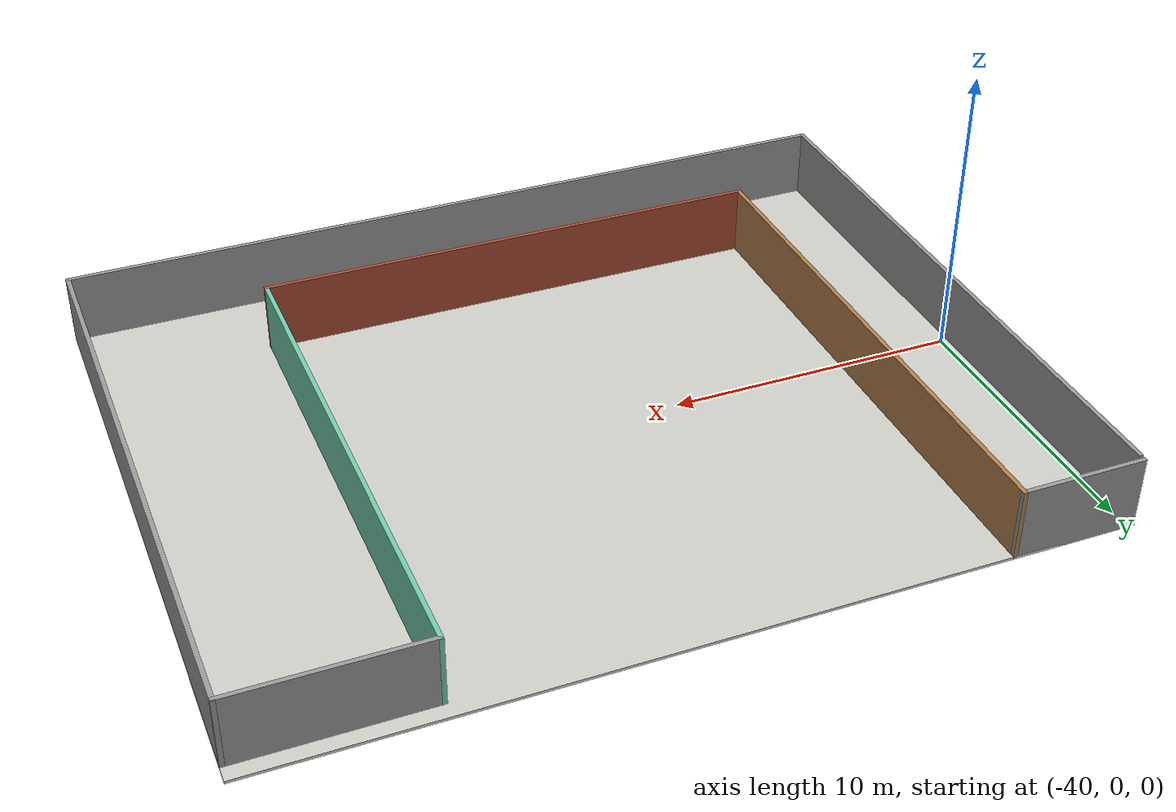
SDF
<?xml version='1.0'?>
<sdf version='1.7'>
  <model name='sketch'>
    <pose>-20.15 -0.257056 0 0 -0 0</pose>
    <link name='Floor_0'>
      <collision name='Floor_0_Collision'>
        <geometry>
          <box>
            <size>28 22 0.1</size>
          </box>
        </geometry>
        <pose>0 0 0.05 0 -0 0</pose>
      </collision>
      <visual name='Floor_0_Visual'>
        <pose>0 0 0.05 0 -0 0</pose>
        <geometry>
          <box>
            <size>28 22 0.1</size>
          </box>
        </geometry>
        <material>
          <script>
            <uri>file://media/materials/scripts/gazebo.material</uri>
            <name>Gazebo/CeilingTiled</name>
          </script>
          <ambient>1 1 1 1</ambient>
        </material>
        <meta>
          <layer>0</layer>
        </meta>
      </visual>
      <pose>-6.15001 0 0 0 -0 0</pose>
    </link>
    <link name='Wall_11'>
      <collision name='Wall_11_Collision'>
        <geometry>
          <box>
            <size>21.75 0.15 2.5</size>
          </box>
        </geometry>
        <pose>0 0 1.25 0 -0 0</pose>
      </collision>
      <visual name='Wall_11_Visual'>
        <pose>0 0 1.25 0 -0 0</pose>
        <geometry>
          <box>
            <size>21.75 0.15 2.5</size>
          </box>
        </geometry>
        <material>
          <script>
            <uri>file://media/materials/scripts/gazebo.material</uri>
            <name>Gazebo/Grey</name>
          </script>
          <ambient>1 1 1 1</ambient>
        </material>
        <meta>
          <layer>0</layer>
        </meta>
      </visual>
      <pose>-20.075 -0.125 0 0 -0 -1.5708</pose>
    </link>
    <link name='Wall_12'>
      <collision name='Wall_12_Collision'>
        <geometry>
          <box>
            <size>28 0.15 2.5</size>
          </box>
        </geometry>
        <pose>0 0 1.25 0 -0 0</pose>
      </collision>
      <visual name='Wall_12_Visual'>
        <pose>0 0 1.25 0 -0 0</pose>
        <geometry>
          <box>
            <size>28 0.15 2.5</size>
          </box>
        </geometry>
        <material>
          <script>
            <uri>file://media/materials/scripts/gazebo.material</uri>
            <name>Gazebo/Grey</name>
          </script>
          <ambient>1 1 1 1</ambient>
        </material>
        <meta>
          <layer>0</layer>
        </meta>
      </visual>
      <pose>-6.15001 -10.925 0 0 -0 0</pose>
    </link>
    <link name='Wall_13'>
      <collision name='Wall_13_Collision'>
        <geometry>
          <box>
            <size>21.5 0.15 2.5</size>
          </box>
        </geometry>
        <pose>0 0 1.25 0 -0 0</pose>
      </collision>
      <visual name='Wall_13_Visual'>
        <pose>0 0 1.25 0 -0 0</pose>
        <geometry>
          <box>
            <size>21.5 0.15 2.5</size>
          </box>
        </geometry>
        <material>
          <script>
            <uri>file://media/materials/scripts/gazebo.material</uri>
            <name>Gazebo/Grey</name>
          </script>
          <ambient>1 1 1 1</ambient>
        </material>
        <meta>
          <layer>0</layer>
        </meta>
      </visual>
      <pose>7.77499 -0.25 0 0 -0 1.5708</pose>
    </link>
    <link name='Wall_14'>
      <collision name='Wall_14_Collision'>
        <geometry>
          <box>
            <size>6.25 0.15 2.5</size>
          </box>
        </geometry>
        <pose>0 0 1.25 0 -0 0</pose>
      </collision>
      <visual name='Wall_14_Visual'>
        <pose>0 0 1.25 0 -0 0</pose>
        <geometry>
          <box>
            <size>6.25 0.15 2.5</size>
          </box>
        </geometry>
        <material>
          <script>
            <uri>file://media/materials/scripts/gazebo.material</uri>
            <name>Gazebo/Grey</name>
          </script>
          <ambient>1 1 1 1</ambient>
        </material>
        <meta>
          <layer>0</layer>
        </meta>
      </visual>
      <pose>4.725 10.425 0 0 -0 3.14158</pose>
    </link>
    <link name='Wall_15'>
      <collision name='Wall_15_Collision'>
        <geometry>
          <box>
            <size>18.5 0.15 2.5</size>
          </box>
        </geometry>
        <pose>0 0 1.25 0 -0 0</pose>
      </collision>
      <visual name='Wall_15_Visual'>
        <pose>0 0 1.25 0 -0 0</pose>
        <geometry>
          <box>
            <size>18.5 0.15 2.5</size>
          </box>
        </geometry>
        <material>
          <script>
            <uri>file://media/materials/scripts/gazebo.material</uri>
            <name>Gazebo/Grey</name>
          </script>
          <ambient>0.435294 0.796078 0.67451 1</ambient>
        </material>
        <meta>
          <layer>0</layer>
        </meta>
      </visual>
      <pose>1.67501 1.25006 0 0 -0 -1.5708</pose>
    </link>
    <link name='Wall_16'>
      <collision name='Wall_16_Collision'>
        <geometry>
          <box>
            <size>17.75 0.15 2.5</size>
          </box>
        </geometry>
        <pose>0 0 1.25 0 -0 0</pose>
      </collision>
      <visual name='Wall_16_Visual'>
        <pose>0 0 1.25 0 -0 0</pose>
        <geometry>
          <box>
            <size>17.75 0.15 2.5</size>
          </box>
        </geometry>
        <material>
          <script>
            <uri>file://media/materials/scripts/gazebo.material</uri>
            <name>Gazebo/Bricks</name>
          </script>
          <ambient>1 1 1 1</ambient>
        </material>
        <meta>
          <layer>0</layer>
        </meta>
      </visual>
      <pose>-7.125 -7.92497 0 0 -0 -3.14159</pose>
    </link>
    <link name='Wall_17'>
      <collision name='Wall_17_Collision'>
        <geometry>
          <box>
            <size>19 0.15 2.5</size>
          </box>
        </geometry>
        <pose>0 0 1.25 0 -0 0</pose>
      </collision>
      <visual name='Wall_17_Visual'>
        <pose>0 0 1.25 0 -0 0</pose>
        <geometry>
          <box>
            <size>19 0.15 2.5</size>
          </box>
        </geometry>
        <material>
          <script>
            <uri>file://media/materials/scripts/gazebo.material</uri>
            <name>Gazebo/Wood</name>
          </script>
          <ambient>1 1 1 1</ambient>
        </material>
        <meta>
          <layer>0</layer>
        </meta>
      </visual>
      <pose>-15.925 1.5 0 0 -0 1.5708</pose>
    </link>
    <link name='Wall_18'>
      <collision name='Wall_18_Collision'>
        <geometry>
          <box>
            <size>4.25 0.15 2.5</size>
          </box>
        </geometry>
        <pose>0 0 1.25 0 -0 0</pose>
      </collision>
      <visual name='Wall_18_Visual'>
        <pose>0 0 1.25 0 -0 0</pose>
        <geometry>
          <box>
            <size>4.25 0.15 2.5</size>
          </box>
        </geometry>
        <material>
          <script>
            <uri>file://media/materials/scripts/gazebo.material</uri>
            <name>Gazebo/Grey</name>
          </script>
          <ambient>1 1 1 1</ambient>
        </material>
        <meta>
          <layer>0</layer>
        </meta>
      </visual>
      <pose>-17.975 10.925 0 0 -0 3.14159</pose>
    </link>
    <static>1</static>
  </model>
</sdf>
